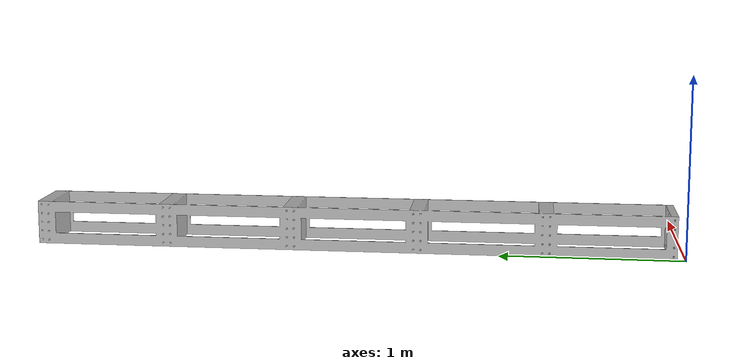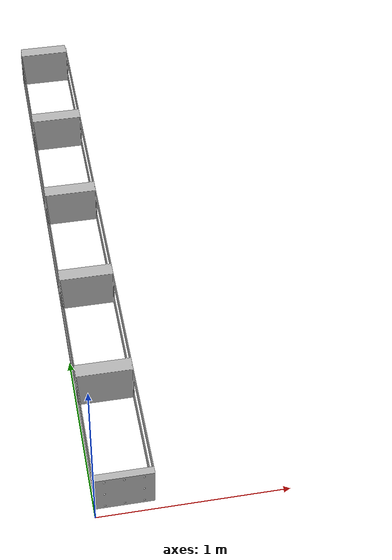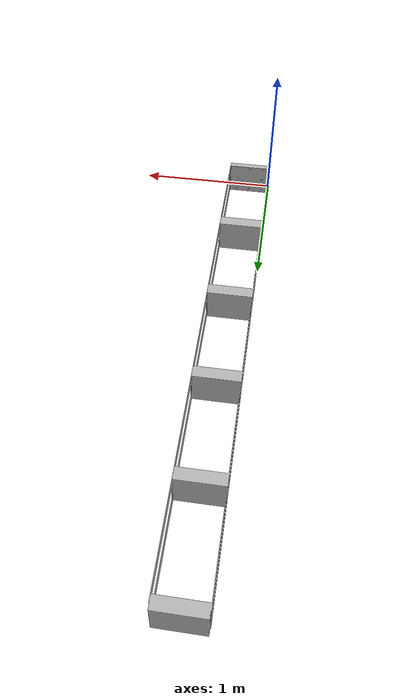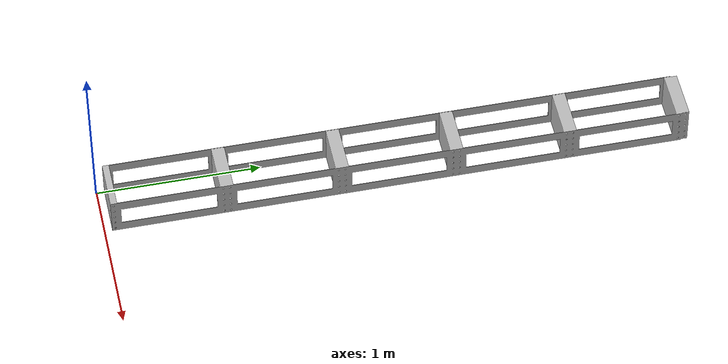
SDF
<sdf version="1.6">
  <model name="shear_building">
    <static>true</static>
    <link name="building_link">
      <!-- Visual -->
      <visual name="building_visual">
        <geometry>
          <mesh>
            <uri>model://building/meshes/shear_building.stl</uri>
            <scale>0.002 0.002 0.002</scale> <!-- Reduce the size by 10x -->
          </mesh>
        </geometry>
      </visual>

      <!-- Collision -->
      <collision name="building_collision">
        <geometry>
          <mesh>
            <uri>model://building/meshes/shear_building.stl</uri>
            <scale>0.002 0.002 0.002</scale> <!-- Reduce the size by 10x -->
          </mesh>
        </geometry>
      </collision>
    </link>
    <!-- Add a plugin to the building to control the scale  -->
    <plugin name="building_plugin" filename="libbuilding_plugin.so"/>
  </model>
</sdf>
